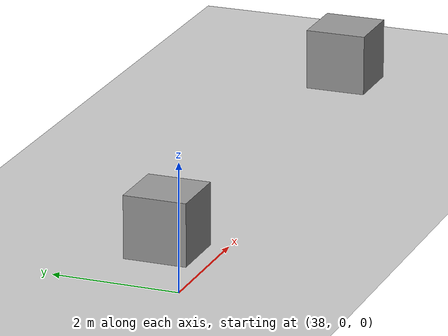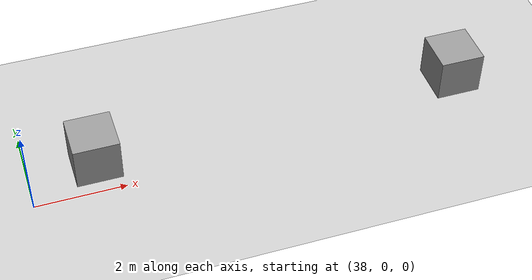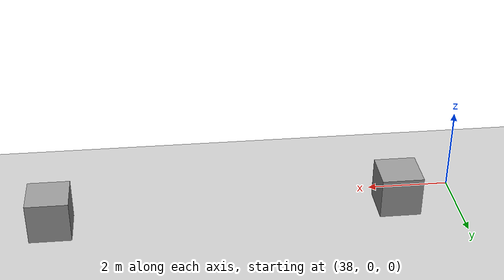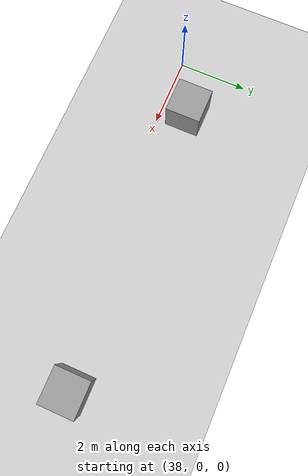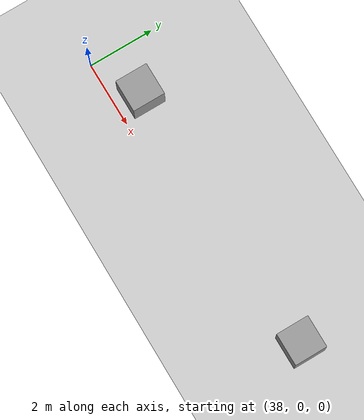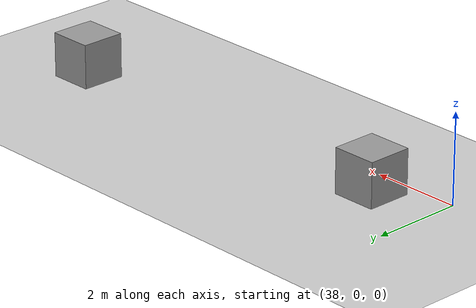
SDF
<sdf version="1.6">
 <world name="default">
  <model name="ground_plane">
   <static>1</static>
   <link name="link">
    <collision name="collision">
     <geometry><plane><normal>0 0 1</normal><size>100 100</size></plane></geometry>
     <surface><friction><ode><mu>100</mu><mu2>50</mu2></ode></friction></surface>
    </collision>
    <visual name="visual">
     <cast_shadows>0</cast_shadows>
     <geometry><plane><normal>0 0 1</normal><size>100 100</size></plane></geometry>
     <material>
      <script><uri>file://media/materials/scripts/gazebo.material</uri><name>Gazebo/Grey</name></script>
     </material>
    </visual>
   </link>
  </model>
  <model name="unit_box_28_clone_13">
   <pose>47.8357 0.949374 0.500376 0 -0.000752 -6.1e-05</pose>
   <link name="link">
    <inertial>
     <mass>1</mass>
     <inertia>
      <ixx>0.166667</ixx>
      <ixy>0</ixy>
      <ixz>0</ixz>
      <iyy>0.166667</iyy>
      <iyz>0</iyz>
      <izz>0.166667</izz>
     </inertia>
    </inertial>
    <collision name="collision"><geometry><box><size>1 1 1</size></box></geometry></collision>
    <visual name="visual">
     <geometry><box><size>1 1 1</size></box></geometry>
     <material>
      <script><name>Gazebo/Grey</name><uri>file://media/materials/scripts/gazebo.material</uri></script>
     </material>
    </visual>
   </link>
  </model>
  <model name="unit_box_28_clone_50_clone_7">
   <pose>39.4783 0.780654 0.5 0 -0 0</pose>
   <link name="link">
    <inertial>
     <mass>1</mass>
     <inertia>
      <ixx>0.166667</ixx>
      <ixy>0</ixy>
      <ixz>0</ixz>
      <iyy>0.166667</iyy>
      <iyz>0</iyz>
      <izz>0.166667</izz>
     </inertia>
    </inertial>
    <collision name="collision"><geometry><box><size>1 1 1</size></box></geometry></collision>
    <visual name="visual">
     <geometry><box><size>1 1 1</size></box></geometry>
     <material>
      <script><name>Gazebo/Grey</name><uri>file://media/materials/scripts/gazebo.material</uri></script>
     </material>
    </visual>
   </link>
  </model>
 </world>
</sdf>
